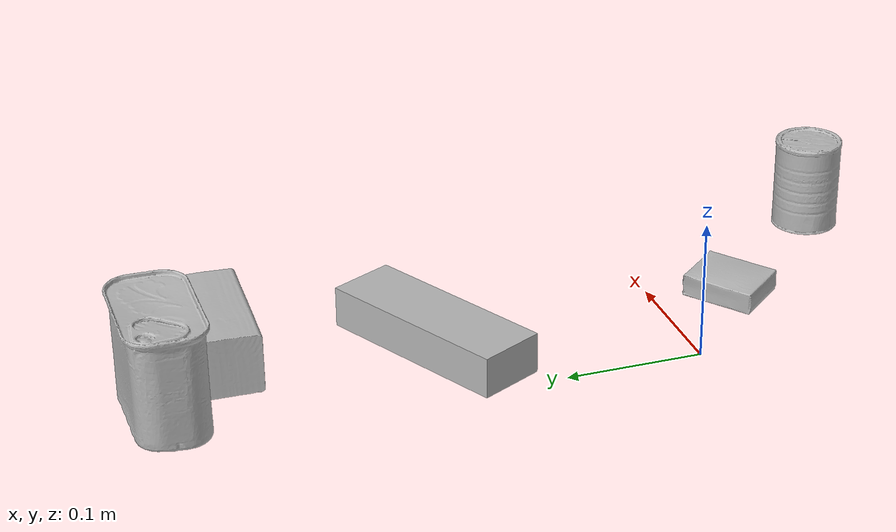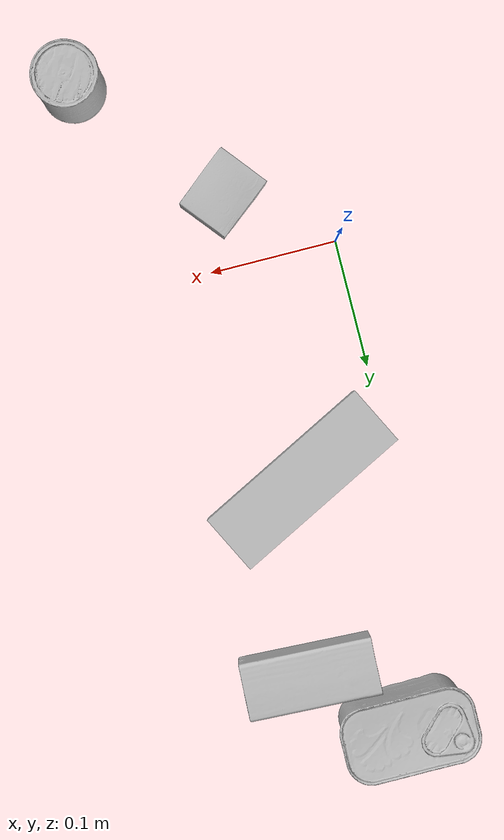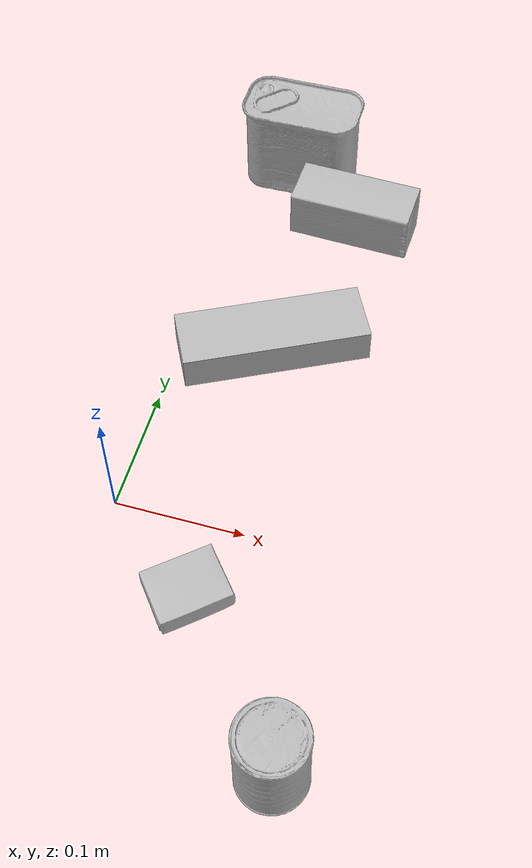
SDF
<sdf version="1.4">
  <world name="default">
    <light name="light1" type="point">
      <pose>0 0 1 0 0 0</pose>
      <diffuse>3 3 3 1</diffuse>
      <specular>3 3 3 1</specular>
    </light>
    <light name="light2" type="point">
      <pose>0 0.5 2 0 0 0</pose>
      <diffuse>1 1 1 1</diffuse>
      <specular>1 1 1 1</specular>
    </light>
    <light name="light3" type="point">
      <pose>0 0.5 2 0 0 0</pose>
      <diffuse>3 3 3 1</diffuse>
      <specular>3 3 3 1</specular>
    </light>
    <scene>
      <ambient>0.7 0.7 0.7</ambient>
    </scene>
    <model name="box1">
      <link name="link_box1">
        <collision name="default">
          <geometry>
            <mesh>
              <uri>model://pudding_box/collision_meshes/collision.obj</uri>
              <scale>0.5 0.5 0.5</scale>
            </mesh>
          </geometry>
          <surface>
            <friction>
              <ode>
                <mu>0.5</mu>
                <mu2>0.5</mu2>
              </ode>
            </friction>
          <contact>
        <ode>
            <max_vel>0</max_vel>
            <min_depth>0.0001</min_depth>
            <kp>1e8</kp>
        </ode>
    </contact></surface>
        </collision>
        <visual name="default">
          <geometry>
            <mesh>
              <uri>model://pudding_box/visual_meshes/visual.dae</uri>
              <scale>0.5 0.5 0.5</scale>
            </mesh>
          </geometry>
        </visual>
        <inertial>
          <mass>0.0642586499452591</mass>
          <pose>0.00024474109522998333 0.00040339428232982755 -0.0002594413817860186 0.005213101302141142 -0.006603800581388343 0.020079827019462423</pose>
          <inertia>
            <ixx>1.8160274e-05</ixx>
            <iyy>1.221836e-05</iyy>
            <izz>2.6818392e-05</izz>
            <ixy>0</ixy>
            <ixz>0</ixz>
            <iyz>0</iyz>
          </inertia>
        </inertial>
      </link>
      <pose>0.07555793225765228 -0.05651447921991348 0.009862902574241161 0.022348430051874202 -0.011391848956632167 -0.8859007969506365</pose>
    </model>
    <model name="box2">
      <link name="link_box2">
        <collision name="default">
          <geometry>
            <mesh>
              <uri>model://wood_block/collision_meshes/collision.obj</uri>
              <scale>0.5 0.5 0.5</scale>
            </mesh>
          </geometry>
          <surface>
            <friction>
              <ode>
                <mu>0.5</mu>
                <mu2>0.5</mu2>
              </ode>
            </friction>
          <contact>
        <ode>
            <max_vel>0</max_vel>
            <min_depth>0.0001</min_depth>
            <kp>1e8</kp>
        </ode>
    </contact></surface>
        </collision>
        <visual name="default">
          <geometry>
            <mesh>
              <uri>model://wood_block/visual_meshes/visual.dae</uri>
              <scale>0.5 0.5 0.5</scale>
            </mesh>
          </geometry>
        </visual>
        <inertial>
          <mass>0.2432606816291809</mass>
          <pose>-2.9066577553749084e-06 -0.000285404734313488 0.00013204290007706732 -0.0522103103121059 -0.005192696448147362 -0.0068613788455752145</pose>
          <inertia>
            <ixx>8.1379905e-05</ixx>
            <iyy>0.0002570791</iyy>
            <izz>0.00025611752</izz>
            <ixy>0</ixy>
            <ixz>0</ixz>
            <iyz>0</iyz>
          </inertia>
        </inertial>
      </link>
      <pose>0.10293988883495331 0.3196738064289093 0.02262926660478115 -0.005208647384537556 0.0057187337719555986 -0.039540093538131066</pose>
    </model>
    <model name="box3">
      <link name="link_box3">
        <collision name="default">
          <geometry>
            <mesh>
              <uri>model://jenga/collision_meshes/collision.obj</uri>
              <scale>1.0 1.0 1.0</scale>
            </mesh>
          </geometry>
          <surface>
            <friction>
              <ode>
                <mu>0.5</mu>
                <mu2>0.5</mu2>
              </ode>
            </friction>
          <contact>
        <ode>
            <max_vel>0</max_vel>
            <min_depth>0.0001</min_depth>
            <kp>1e8</kp>
        </ode>
    </contact></surface>
        </collision>
        <visual name="default">
          <geometry>
            <mesh>
              <uri>model://jenga/visual_meshes/visual.dae</uri>
              <scale>1.0 1.0 1.0</scale>
            </mesh>
          </geometry>
        </visual>
        <inertial>
          <mass>0.20405839383602142</mass>
          <pose>-2.502855807051674e-07 -0.00010250010382151231 -4.0923401684267446e-05 0.0 -7.342155186052628e-07 0.0</pose>
          <inertia>
            <ixx>5.6467907e-05</ixx>
            <iyy>0.000382625</iyy>
            <izz>0.00040848472</izz>
            <ixy>0</ixy>
            <ixz>0</ixz>
            <iyz>0</iyz>
          </inertia>
        </inertial>
      </link>
      <pose>0.07119269669055939 0.1727093905210495 0.014999998733401299 1.5733639612882892e-09 -9.518840649570913e-10 -2.6698655923186534</pose>
    </model>
    <model name="can1">
      <link name="link_can1">
        <collision name="default">
          <geometry>
            <mesh>
              <uri>model://potted_meat_can/collision_meshes/collision.obj</uri>
              <scale>1.0 1.0 1.0</scale>
            </mesh>
          </geometry>
          <surface>
            <friction>
              <ode>
                <mu>0.5</mu>
                <mu2>0.5</mu2>
              </ode>
            </friction>
          <contact>
        <ode>
            <max_vel>0</max_vel>
            <min_depth>0.0001</min_depth>
            <kp>1e8</kp>
        </ode>
    </contact></surface>
        </collision>
        <visual name="default">
          <geometry>
            <mesh>
              <uri>model://potted_meat_can/visual_meshes/visual.dae</uri>
              <scale>1.0 1.0 1.0</scale>
            </mesh>
          </geometry>
        </visual>
        <inertial>
          <mass>0.4665880799293518</mass>
          <pose>0.0002288814284838736 -5.989112105453387e-05 -0.0006367449532262981 -0.028093382538733707 -0.007232605550223235 0.01540626728411476</pose>
          <inertia>
            <ixx>0.0006002166</ixx>
            <iyy>0.0003646772</iyy>
            <izz>0.00043654343</izz>
            <ixy>0</ixy>
            <ixz>0</ixz>
            <iyz>0</iyz>
          </inertia>
        </inertial>
      </link>
      <pose>0.04175843298435211 0.37113213539123535 0.042128004133701324 -3.18172771221288e-08 -4.834801075425913e-07 -1.5810932870969996</pose>
    </model>
    <model name="can2">
      <link name="link_can2">
        <collision name="default">
          <geometry>
            <mesh>
              <uri>model://master_chef_can/collision_meshes/collision.obj</uri>
              <scale>0.5 0.5 0.5</scale>
            </mesh>
          </geometry>
          <surface>
            <friction>
              <ode>
                <mu>0.5</mu>
                <mu2>0.5</mu2>
              </ode>
            </friction>
          <contact>
        <ode>
            <max_vel>0</max_vel>
            <min_depth>0.0001</min_depth>
            <kp>1e8</kp>
        </ode>
    </contact></surface>
        </collision>
        <visual name="default">
          <geometry>
            <mesh>
              <uri>model://master_chef_can/visual_meshes/visual.dae</uri>
              <scale>0.5 0.5 0.5</scale>
            </mesh>
          </geometry>
        </visual>
        <inertial>
          <mass>0.1648906171321869</mass>
          <pose>-4.661964703700505e-05 1.3926853625889635e-07 -5.079993206891231e-05 -0.0017995099244119924 0.0006479308957776391 -0.6102586503741109</pose>
          <inertia>
            <ixx>9.677961e-05</ixx>
            <iyy>9.606731e-05</iyy>
            <izz>5.3478136e-05</izz>
            <ixy>0</ixy>
            <ixz>0</ixz>
            <iyz>0</iyz>
          </inertia>
        </inertial>
      </link>
      <pose>0.16832035779953003 -0.16397300362586975 0.03530200198292732 -1.2243256189019375e-06 -1.0499938135682534e-06 1.5037944724663133</pose>
    </model>
  <physics type="ode">
      <max_contacts>50</max_contacts>
      <ode>
        <solver>
          <type>quick</type>
          <iters>75</iters>
        </solver>
        <constraints>
          <contact_max_correcting_vel>0</contact_max_correcting_vel>
          <contact_surface_layer>0</contact_surface_layer>
        </constraints>
      </ode>
    </physics></world>
</sdf>
